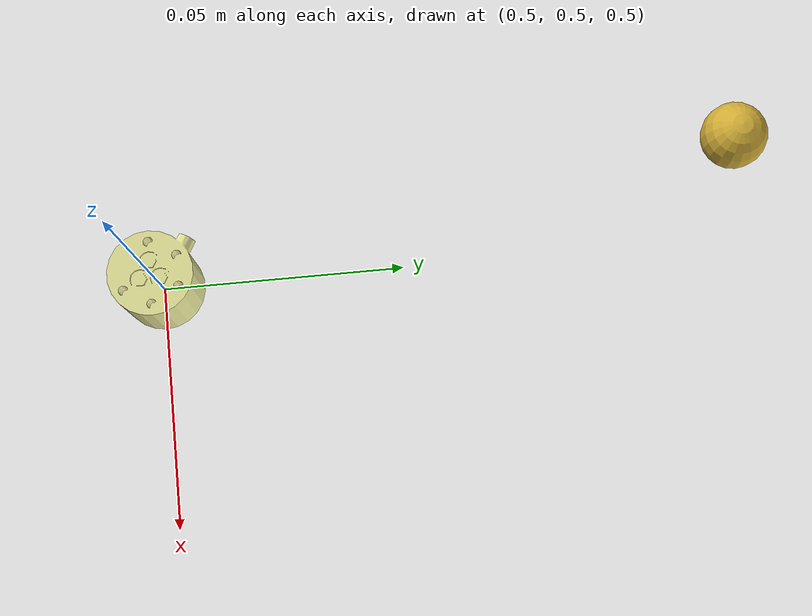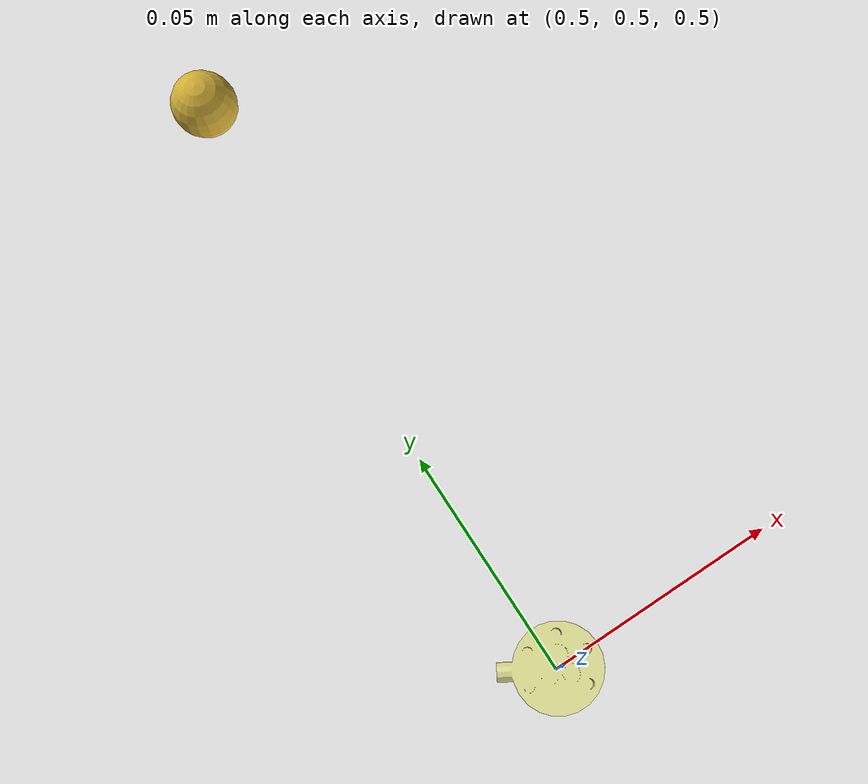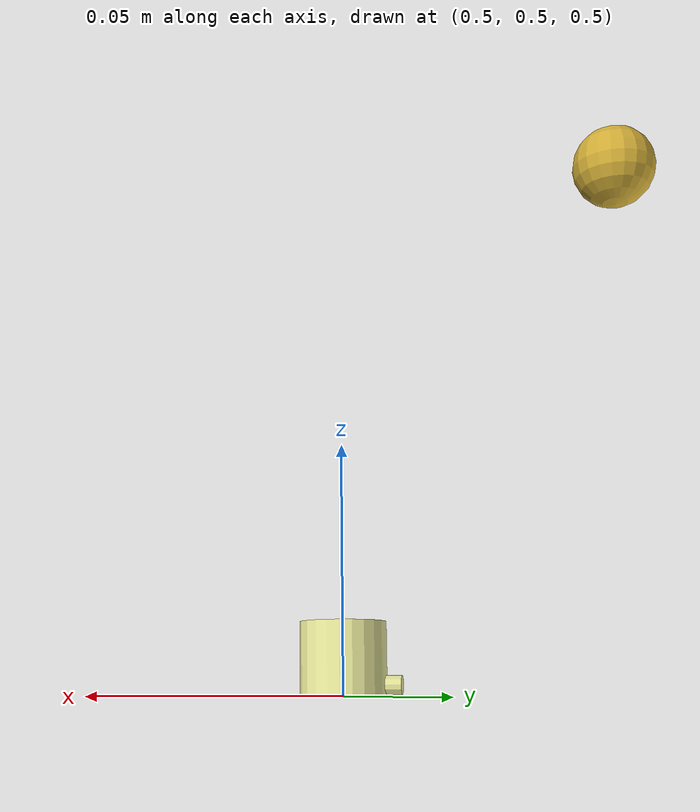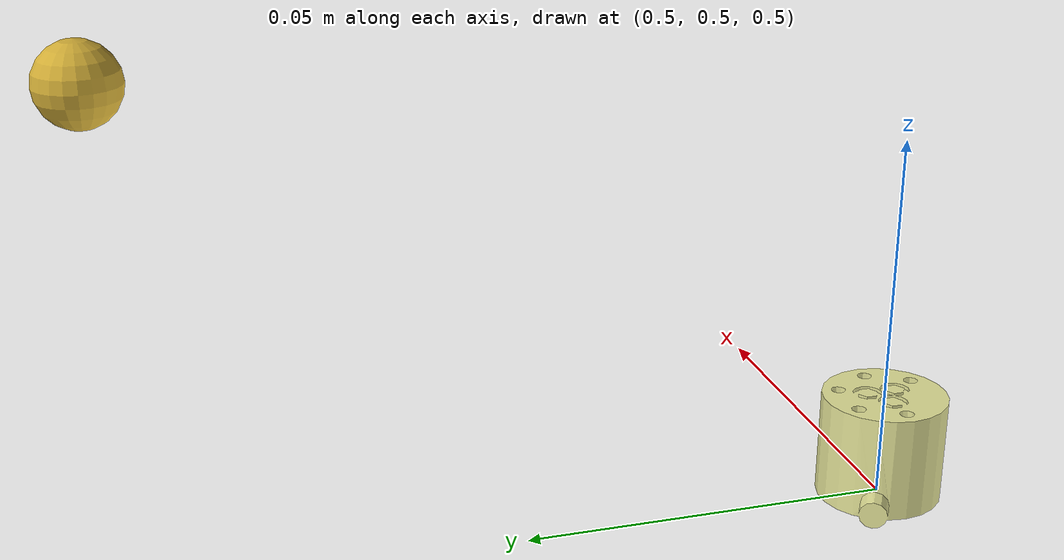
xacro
<?xml version="1.0" ?>
<robot
       xmlns:xacro="http://www.ros.org/wiki/xacro"
       name="ati_nano17_ft_demo">

  <!-- basic Gazebo demo of the ati_nano17_ft sensor.  -->

  <xacro:include filename="$(find tams_printed_ft)/urdf/ft_payload.xacro" />
  <xacro:include filename="$(find tams_printed_ft)/urdf/ft_sensor.xacro" />

  <xacro:include filename="$(find tams_printed_ft)/urdf/ati_nano17_ft.xacro" />

  <link name="world" />

  <xacro:ft_control_plugin name="ati_nano17_ft" />

  <xacro:ft_sensor_plugin
     name="ati_nano17_ft"
     joint="sensor_joint"
     rate="200"
     topic="wrench" >
  </xacro:ft_sensor_plugin>

  <xacro:ati_nano17_ft name="ati_nano17_ft" />

  <joint name="world_ati_nano17_ft_joint" type="fixed">
    <parent link="world" />
    <child link="ati_nano17_ft" />
    <origin xyz="0.5 0.5 0.5" rpy="0 0 0" />
  </joint>

  <!-- single payload for testing -->

  <xacro:ft_payload_sphere  name="m50g" mass="0.05" diameter="0.01">
    <cog_origin xyz="0 0 0" rpy="0 0 0"/>
  </xacro:ft_payload_sphere>

  <joint name="ati_nano17_ft_payload_joint" type="fixed">
    <parent link="ati_nano17_ft_tool_mount" />
    <child link="m50g" />
    <origin xyz="0 0.1 0.05" rpy="0 0 0" />
  </joint>

</robot>

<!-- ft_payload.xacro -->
<robot
       xmlns:xacro="http://www.ros.org/wiki/xacro"
       name="ft_paylaod">

<!-- configurable payload for static force/torque tests -->

<xacro:macro name="ft_payload_sphere" params="name mass *cog_origin diameter">
  <link name="${name}">
    <inertial>
      <xacro:insert_block name="cog_origin" />
      <mass value="${mass}" />
      <inertia  ixx="0.001" ixy="0" ixz="0" iyy="0.001" iyz="0" izz="0.001" />
    </inertial>
    <visual>
      <xacro:insert_block name="cog_origin" />
      <material name="ft_payload_gold" > 212,175,55
        <color rgba="${212/255} ${175/255} ${55/255} 1.0" />
      </material>
      <geometry>
         <sphere radius="${diameter/2}" />
      </geometry>
    </visual>
    <collision>
      <xacro:insert_block name="cog_origin" />
      <geometry>
         <sphere radius="${diameter/2}" />
      </geometry>
    </collision>
  </link>

  <gazebo reference="${name}">
      <material>Gazebo/Gold</material>
      <turnGravityOff>false</turnGravityOff>
      <selfCollide>false</selfCollide>
      <!-- kp: stiffness kd: damping mu1, mu2: friction -->
      <mu1>100.0</mu1>
      <mu2>100.0</mu2>
      <kp>1000000.0</kp>
      <kd>1.0</kd>
  </gazebo>
</xacro:macro>

</robot>

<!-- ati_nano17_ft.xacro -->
<robot xmlns:xacro="http://www.ros.org/wiki/xacro">

	<!-- Common tools: PI, inertias of a cuboid and cylinder -->
	<xacro:property name="M_PI" value="3.1415926535897931"/>

	<xacro:macro name="cuboid_inertia_def" params="width height length mass">
	  <inertia ixx="${mass * (height * height + length * length) / 12}"
			 iyy="${mass * (width * width + length * length) / 12}"
			 izz="${mass * (width * width + height * height) / 12}"
			 ixy="0" iyz="0" ixz="0"/>
	</xacro:macro>

	<xacro:macro name="cylinder_inertia_def" params="radius length mass">
	  <inertia ixx="${mass * (3 * radius * radius + length * length) / 12}"
			 iyy="${mass * radius* radius / 2}"
			 izz="${mass * (3 * radius * radius + length * length) / 12}"
			 ixy="0" iyz="0" ixz="0"/>
	</xacro:macro>

	<xacro:macro name="ati_nano17_ft" params="name" >
    <link name="${name}">
			<inertial>
				<mass value="0.00907"/>
				<origin xyz="0 0 0.00725"  />
				<xacro:cylinder_inertia_def radius="0.085" length="0.0145" mass="0.00907"/>
			</inertial>
			<visual>
				<!-- origin xyz="0 0 0.00725" rpy="0 0 0"/ -->
				<origin xyz="0 0 0" rpy="0 0 0"/>
        <material name="ati_nano17_silver">
          <color rgba="0.9 0.9 0.6 1.0" />
        </material>
				<geometry>
					<mesh filename="package://tams_printed_ft/meshes/ati_nano17.dae"/>
					<!-- cylinder radius="0.0085" length="0.0145"/ -->
				</geometry>
			</visual>
			<collision>
				<origin xyz="0 0 0.00725" rpy="0 0 0"/>
				<geometry>
					<cylinder radius="0.0085" length="0.0145"/>
				</geometry>
			</collision>
    </link>

    <gazebo reference="${name}">
      <material>Gazebo/Silver</material>
      <turnGravityOff>false</turnGravityOff>
      <selfCollide>false</selfCollide>
      <!-- kp: stiffness kd: damping mu1, mu2: friction -->
      <mu1>100.0</mu1>
      <mu2>100.0</mu2>
      <kp>1000000.0</kp>
      <kd>1.0</kd>
   </gazebo>

    <link name="${name}_sensor_frame">
		  <origin xyz="0 0 0.0145" rpy="0 0 0"/>
	  </link>

    <!-- type=floating, no axis required? -->
    <joint name="${name}_sensor_joint" type="revolute">
      <parent link="${name}" />
      <child link="${name}_sensor_frame" />
      <origin xyz="0 0 ${0.011}" rpy="0 0 0" />

      <axis xyz="1 0 0" rpy="0 0 0" />
      <dynamics damping="1.01" friction="0.05" />
      <limit lower="-0.001" upper="0.001" effort="100" velocity="1" />
    </joint>

    <transmission name="${name}_sensor_joint_transmission">
      <type>transmission_interface/SimpleTransmission</type>
      <joint name="${name}_sensor_joint">
        <hardwareInterface>hardware_interface/EffortJointInterface</hardwareInterface>
      </joint>
      <actuator name="${name}_sensor_joint_motor">
        <hardwareInterface>hardware_interface/EffortJointInterface</hardwareInterface>
        <mechanicalReduction>1</mechanicalReduction>
      </actuator>
    </transmission>

    <link name="${name}_tool_mount" />

    <joint name="${name}_tool_mount_joint" type="fixed">
      <parent link="${name}_sensor_frame" />
      <child link="${name}_tool_mount" />
      <origin xyz="0 0 ${0.0035}" rpy="0 0 0" />
    </joint>

	</xacro:macro>

  <!-- 17mm x 5m height cylinder -->
	<xacro:macro name="nano17_tool_plate">
			<inertial>
				<mass value="0.002"/>
				<origin xyz="0 0 0.0025"  />
				<xacro:cylinder_inertia_def radius="0.085" length="0.005" mass="0.002"/>
			</inertial>
			<visual>
				<!-- origin xyz="0 0 0.00725" rpy="0 0 0"/ -->
				<origin xyz="0 0 0.0025" rpy="0 0 0"/>
				<geometry>
					<cylinder radius="0.0085" length="0.005"/>
				</geometry>
			</visual>
			<collision>
				<origin xyz="0 0 0.0025" rpy="0 0 0"/>
				<geometry>
					<cylinder radius="0.0085" length="0.005"/>
				</geometry>
			</collision>
	</xacro:macro>

</robot>
